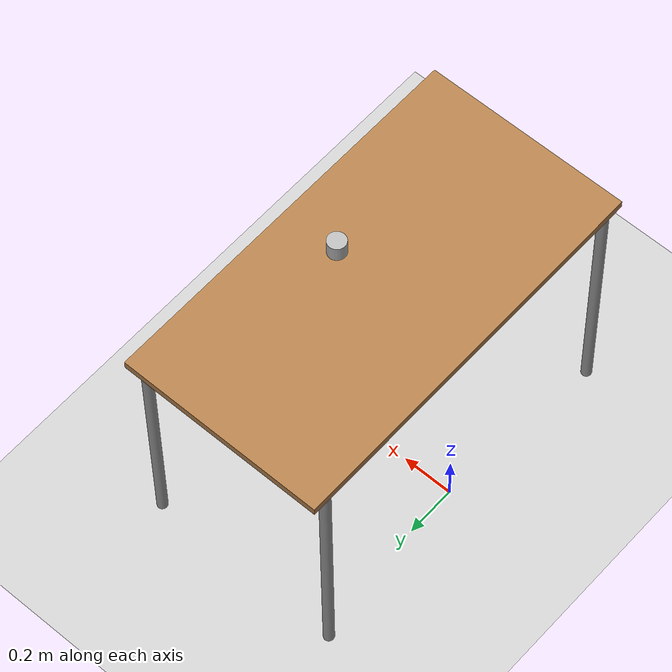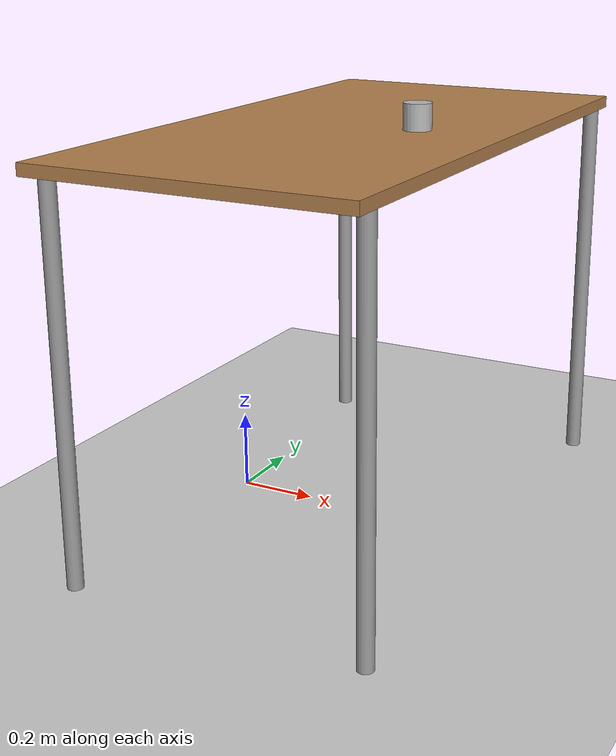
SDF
<?xml version="1.0" ?>
<sdf version="1.5">
  <world name="default">

		<!-- Setup camera initial pose -->
    <gui>
			<camera name="gzclient_camera">
				<pose>3.64 0 3.36 0 0.57 3.1414</pose>
			</camera>
    </gui>

    <!-- A global light source -->
    <include>
      <uri>model://sun</uri>
	    <pose>0 0 0 0 0 0</pose>
    </include>

    <!-- A ground plane -->
    <include>
      <uri>model://ground_plane</uri>
      <pose>0 0 0 0 0 0</pose>
    </include>

		<!-- Add table -->
		<include>
			<uri>model://table</uri>
			<pose>0.33 0.0 0.0 0 0 1.5707</pose>
		</include>

		<!-- Add beer can -->
		<include>
			<uri>model://beer</uri>
			<pose>0.5 0 1.02 0 0 0</pose>
		</include>

		<!-- Cubo 4 cm, preto -->

	<plugin name="gazebo_ros_link_attacher" filename="libgazebo_ros_link_attacher.so"/>

		<!-- keep barebones scene -->
    <scene>
    </scene>

  </world>
</sdf>

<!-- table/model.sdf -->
<sdf version="1.5">
  <model name="table">
    <static>true</static>
    <link name="link">
      <collision name="surface">
        <pose>0 0 1.0 0 0 0</pose>
        <geometry>
          <box>
            <size>1.5 0.8 0.03</size>
          </box>
        </geometry>
        <surface>
          <friction>
            <ode>
              <mu>0.6</mu>
              <mu2>0.6</mu2>
            </ode>
          </friction>
        </surface>
      </collision>
      <visual name="visual1">
        <pose>0 0 1.0 0 0 0</pose>
        <geometry>
          <box>
            <size>1.5 0.8 0.03</size>
          </box>
        </geometry>
        <material>
          <script>
            <uri>model://media/materials/scripts/gazebo.material</uri>
            <name>Gazebo/Wood</name>
          </script>
        </material>
      </visual>
      <collision name="front_left_leg">
        <pose>0.68 0.38 0.5 0 0 0</pose>
        <geometry>
          <cylinder>
            <radius>0.02</radius>
            <length>1.0</length>
          </cylinder>
        </geometry>
      </collision>
      <visual name="front_left_leg">
        <pose>0.68 0.38 0.5 0 0 0</pose>
        <geometry>
          <cylinder>
            <radius>0.02</radius>
            <length>1.0</length>
          </cylinder>
        </geometry>
        <material>
          <script>
            <uri>model://media/materials/scripts/gazebo.material</uri>
            <name>Gazebo/Grey</name>
          </script>
        </material>
      </visual>
      <collision name="front_right_leg">
        <pose>0.68 -0.38 0.5 0 0 0</pose>
        <geometry>
          <cylinder>
            <radius>0.02</radius>
            <length>1.0</length>
          </cylinder>
        </geometry>
      </collision>
      <visual name="front_right_leg">
        <pose>0.68 -0.38 0.5 0 0 0</pose>
        <geometry>
          <cylinder>
            <radius>0.02</radius>
            <length>1.0</length>
          </cylinder>
        </geometry>
        <material>
          <script>
            <uri>model://media/materials/scripts/gazebo.material</uri>
            <name>Gazebo/Grey</name>
          </script>
        </material>
      </visual>
      <collision name="back_right_leg">
        <pose>-0.68 -0.38 0.5 0 0 0</pose>
        <geometry>
          <cylinder>
            <radius>0.02</radius>
            <length>1.0</length>
          </cylinder>
        </geometry>
      </collision>
      <visual name="back_right_leg">
        <pose>-0.68 -0.38 0.5 0 0 0</pose>
        <geometry>
          <cylinder>
            <radius>0.02</radius>
            <length>1.0</length>
          </cylinder>
        </geometry>
        <material>
          <script>
            <uri>model://media/materials/scripts/gazebo.material</uri>
            <name>Gazebo/Grey</name>
          </script>
        </material>
      </visual>
      <collision name="back_left_leg">
        <pose>-0.68 0.38 0.5 0 0 0</pose>
        <geometry>
          <cylinder>
            <radius>0.02</radius>
            <length>1.0</length>
          </cylinder>
        </geometry>
      </collision>
      <visual name="back_left_leg">
        <pose>-0.68 0.38 0.5 0 0 0</pose>
        <geometry>
          <cylinder>
            <radius>0.02</radius>
            <length>1.0</length>
          </cylinder>
        </geometry>
        <material>
          <script>
            <uri>model://media/materials/scripts/gazebo.material</uri>
            <name>Gazebo/Grey</name>
          </script>
        </material>
      </visual>
    </link>
  </model>
</sdf>

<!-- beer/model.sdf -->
<sdf version='1.4'>
  <model name="beer">
    <link name='link'>
      <pose>0 0 0 0 0 0</pose>
      <inertial>
        <mass>0.390</mass>
        <inertia>
          <ixx>0.00058</ixx>
          <ixy>0</ixy>
          <ixz>0</ixz>
          <iyy>0.00058</iyy>
          <iyz>0</iyz>
          <izz>0.00025</izz>
        </inertia>
      </inertial>
      <collision name='collision'>
        <geometry>
          <cylinder>
            <radius>0.03500</radius>
            <length>0.12000</length>
          </cylinder>
        </geometry>
      </collision>

      <visual name='visual'>
        <geometry>
          <cylinder>
            <radius>0.03500</radius>
            <length>0.12000</length>
          </cylinder>
        </geometry>

        <material>
          <script>
            <uri>model://beer/materials/scripts</uri>
            <uri>model://beer/materials/textures</uri>
            <name>Beer/Diffuse</name>
          </script>
        </material>
      </visual>
    </link>
  </model>
</sdf>
